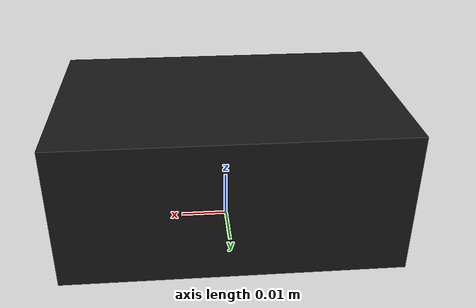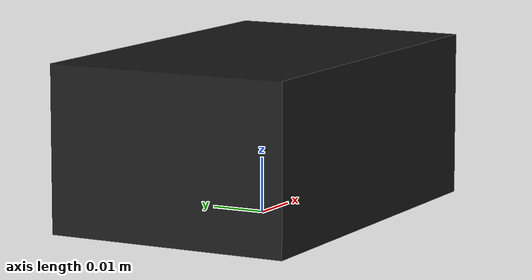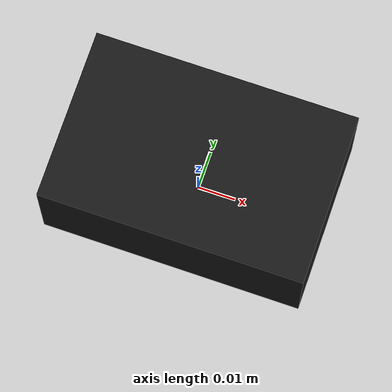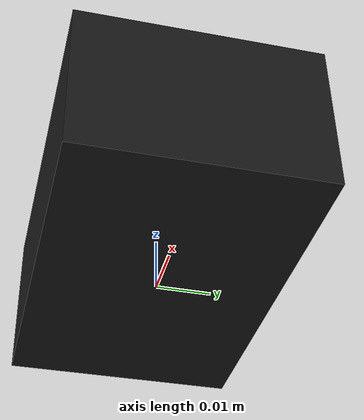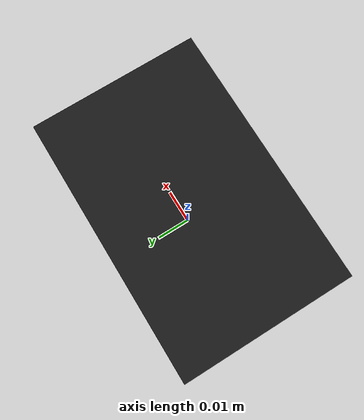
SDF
<?xml version='1.0'?>
<sdf version="1.7">
  <model name="obj_mouse">
    <pose>0 0 0.015 0 0 0</pose>
    <static>true</static>
    <link name="link">
      <collision name="collision">
        <geometry>
          <box>
            <size>0.07 0.045 0.03</size>
          </box>
        </geometry>
      </collision>
      <visual name="visual">
        <geometry>
          <box>
            <size>0.07 0.045 0.03</size>
          </box>
        </geometry>
        <material>
          <ambient>0.10 0.10 0.10 1</ambient>
          <diffuse>0.10 0.10 0.10 1</diffuse>
          <specular>0.02 0.02 0.02 1</specular>
          <emissive>0 0 0 1</emissive>
        </material>
      </visual>
    </link>
  </model>
</sdf>
